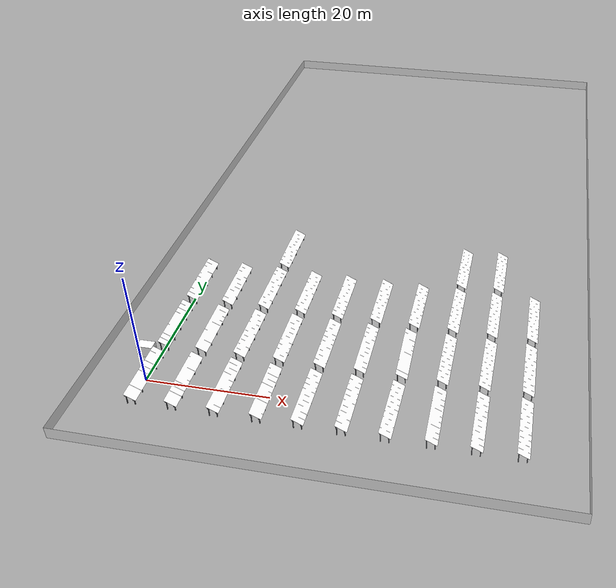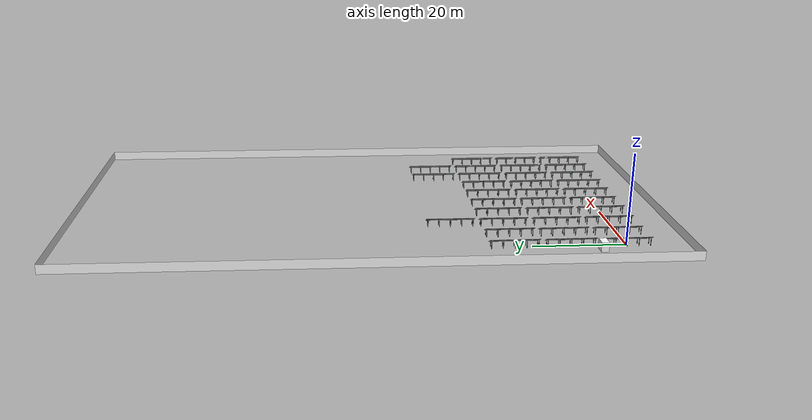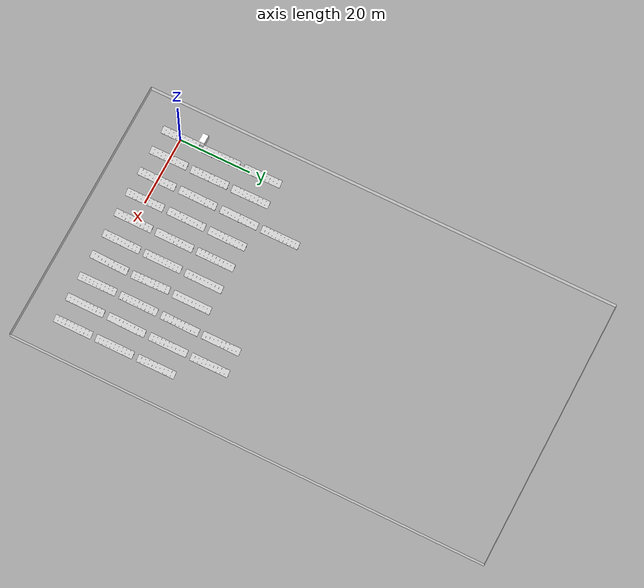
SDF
<sdf version="1.10">
 <world name="solar_farm">
  <model name="table_0000">
   <static>true</static>
   <pose>-0.004 0.024 0 0 0 0.00622</pose>
   <link name="table">
    <collision name="glass_col">
     <pose>0 0 1.6 0 0.488692 0</pose>
     <geometry><box><size>2.100 10.680 0.040</size></box></geometry>
    </collision>
    <visual name="glass">
     <pose>0 0 1.6 0 0.488692 0</pose>
     <geometry><mesh><uri>model://solar_farm_assets/meshes/pv_glass.obj</uri></mesh></geometry>
     <material>
      <ambient>0.25 0.25 0.25 1</ambient>
      <diffuse>1 1 1 1</diffuse>
      <specular>0.4 0.4 0.4 1</specular>
      <pbr>
       <metal>
        <albedo_map>model://solar_farm_assets/materials/textures/pv_atlas_07_albedo.png</albedo_map>
        <roughness_map>model://solar_farm_assets/materials/textures/pv_atlas_07_roughness.png</roughness_map>
        <normal_map>model://solar_farm_assets/materials/textures/pv_normal.png</normal_map>
        <metalness>0.1</metalness>
       </metal>
      </pbr>
     </material>
    </visual>
    <visual name="rack">
     <cast_shadows>false</cast_shadows>
     <geometry><mesh><uri>model://solar_farm_assets/meshes/pv_rack.obj</uri></mesh></geometry>
     <material>
      <ambient>0.18 0.18 0.20 1</ambient>
      <diffuse>0.40 0.41 0.43 1</diffuse>
      <specular>0.5 0.5 0.5 1</specular>
      <pbr><metal><roughness>0.45</roughness><metalness>0.85</metalness></metal></pbr>
     </material>
    </visual>
   </link>
  </model>
  <model name="table_0001">
   <static>true</static>
   <pose>0.085 11.881 0 0 0 0.01574</pose>
   <link name="table">
    <collision name="glass_col">
     <pose>0 0 1.6 0 0.488692 0</pose>
     <geometry><box><size>2.100 10.680 0.040</size></box></geometry>
    </collision>
    <visual name="glass">
     <pose>0 0 1.6 0 0.488692 0</pose>
     <geometry><mesh><uri>model://solar_farm_assets/meshes/pv_glass.obj</uri></mesh></geometry>
     <material>
      <ambient>0.25 0.25 0.25 1</ambient>
      <diffuse>1 1 1 1</diffuse>
      <specular>0.4 0.4 0.4 1</specular>
      <pbr>
       <metal>
        <albedo_map>model://solar_farm_assets/materials/textures/pv_atlas_05_albedo.png</albedo_map>
        <roughness_map>model://solar_farm_assets/materials/textures/pv_atlas_05_roughness.png</roughness_map>
        <normal_map>model://solar_farm_assets/materials/textures/pv_normal.png</normal_map>
        <metalness>0.1</metalness>
       </metal>
      </pbr>
     </material>
    </visual>
    <visual name="rack">
     <cast_shadows>false</cast_shadows>
     <geometry><mesh><uri>model://solar_farm_assets/meshes/pv_rack.obj</uri></mesh></geometry>
     <material>
      <ambient>0.18 0.18 0.20 1</ambient>
      <diffuse>0.40 0.41 0.43 1</diffuse>
      <specular>0.5 0.5 0.5 1</specular>
      <pbr><metal><roughness>0.45</roughness><metalness>0.85</metalness></metal></pbr>
     </material>
    </visual>
   </link>
  </model>
  <model name="table_0002">
   <static>true</static>
   <pose>0.010 23.819 0 0 0 0.01479</pose>
   <link name="table">
    <collision name="glass_col">
     <pose>0 0 1.6 0 0.488692 0</pose>
     <geometry><box><size>2.100 10.680 0.040</size></box></geometry>
    </collision>
    <visual name="glass">
     <pose>0 0 1.6 0 0.488692 0</pose>
     <geometry><mesh><uri>model://solar_farm_assets/meshes/pv_glass.obj</uri></mesh></geometry>
     <material>
      <ambient>0.25 0.25 0.25 1</ambient>
      <diffuse>1 1 1 1</diffuse>
      <specular>0.4 0.4 0.4 1</specular>
      <pbr>
       <metal>
        <albedo_map>model://solar_farm_assets/materials/textures/pv_atlas_14_albedo.png</albedo_map>
        <roughness_map>model://solar_farm_assets/materials/textures/pv_atlas_14_roughness.png</roughness_map>
        <normal_map>model://solar_farm_assets/materials/textures/pv_normal.png</normal_map>
        <metalness>0.1</metalness>
       </metal>
      </pbr>
     </material>
    </visual>
    <visual name="rack">
     <cast_shadows>false</cast_shadows>
     <geometry><mesh><uri>model://solar_farm_assets/meshes/pv_rack.obj</uri></mesh></geometry>
     <material>
      <ambient>0.18 0.18 0.20 1</ambient>
      <diffuse>0.40 0.41 0.43 1</diffuse>
      <specular>0.5 0.5 0.5 1</specular>
      <pbr><metal><roughness>0.45</roughness><metalness>0.85</metalness></metal></pbr>
     </material>
    </visual>
   </link>
  </model>
  <model name="table_0010">
   <static>true</static>
   <pose>6.442 0.004 0 0 0 0.00386</pose>
   <link name="table">
    <collision name="glass_col">
     <pose>0 0 1.6 0 0.488692 0</pose>
     <geometry><box><size>2.100 10.680 0.040</size></box></geometry>
    </collision>
    <visual name="glass">
     <pose>0 0 1.6 0 0.488692 0</pose>
     <geometry><mesh><uri>model://solar_farm_assets/meshes/pv_glass.obj</uri></mesh></geometry>
     <material>
      <ambient>0.25 0.25 0.25 1</ambient>
      <diffuse>1 1 1 1</diffuse>
      <specular>0.4 0.4 0.4 1</specular>
      <pbr>
       <metal>
        <albedo_map>model://solar_farm_assets/materials/textures/pv_atlas_06_albedo.png</albedo_map>
        <roughness_map>model://solar_farm_assets/materials/textures/pv_atlas_06_roughness.png</roughness_map>
        <normal_map>model://solar_farm_assets/materials/textures/pv_normal.png</normal_map>
        <metalness>0.1</metalness>
       </metal>
      </pbr>
     </material>
    </visual>
    <visual name="rack">
     <cast_shadows>false</cast_shadows>
     <geometry><mesh><uri>model://solar_farm_assets/meshes/pv_rack.obj</uri></mesh></geometry>
     <material>
      <ambient>0.18 0.18 0.20 1</ambient>
      <diffuse>0.40 0.41 0.43 1</diffuse>
      <specular>0.5 0.5 0.5 1</specular>
      <pbr><metal><roughness>0.45</roughness><metalness>0.85</metalness></metal></pbr>
     </material>
    </visual>
   </link>
  </model>
  <model name="table_0011">
   <static>true</static>
   <pose>6.492 11.845 0 0 0 0.01115</pose>
   <link name="table">
    <collision name="glass_col">
     <pose>0 0 1.6 0 0.488692 0</pose>
     <geometry><box><size>2.100 10.680 0.040</size></box></geometry>
    </collision>
    <visual name="glass">
     <pose>0 0 1.6 0 0.488692 0</pose>
     <geometry><mesh><uri>model://solar_farm_assets/meshes/pv_glass.obj</uri></mesh></geometry>
     <material>
      <ambient>0.25 0.25 0.25 1</ambient>
      <diffuse>1 1 1 1</diffuse>
      <specular>0.4 0.4 0.4 1</specular>
      <pbr>
       <metal>
        <albedo_map>model://solar_farm_assets/materials/textures/pv_atlas_11_albedo.png</albedo_map>
        <roughness_map>model://solar_farm_assets/materials/textures/pv_atlas_11_roughness.png</roughness_map>
        <normal_map>model://solar_farm_assets/materials/textures/pv_normal.png</normal_map>
        <metalness>0.1</metalness>
       </metal>
      </pbr>
     </material>
    </visual>
    <visual name="rack">
     <cast_shadows>false</cast_shadows>
     <geometry><mesh><uri>model://solar_farm_assets/meshes/pv_rack.obj</uri></mesh></geometry>
     <material>
      <ambient>0.18 0.18 0.20 1</ambient>
      <diffuse>0.40 0.41 0.43 1</diffuse>
      <specular>0.5 0.5 0.5 1</specular>
      <pbr><metal><roughness>0.45</roughness><metalness>0.85</metalness></metal></pbr>
     </material>
    </visual>
   </link>
  </model>
  <model name="table_0012">
   <static>true</static>
   <pose>6.516 23.714 0 0 0 0.00940</pose>
   <link name="table">
    <collision name="glass_col">
     <pose>0 0 1.6 0 0.488692 0</pose>
     <geometry><box><size>2.100 10.680 0.040</size></box></geometry>
    </collision>
    <visual name="glass">
     <pose>0 0 1.6 0 0.488692 0</pose>
     <geometry><mesh><uri>model://solar_farm_assets/meshes/pv_glass.obj</uri></mesh></geometry>
     <material>
      <ambient>0.25 0.25 0.25 1</ambient>
      <diffuse>1 1 1 1</diffuse>
      <specular>0.4 0.4 0.4 1</specular>
      <pbr>
       <metal>
        <albedo_map>model://solar_farm_assets/materials/textures/pv_atlas_12_albedo.png</albedo_map>
        <roughness_map>model://solar_farm_assets/materials/textures/pv_atlas_12_roughness.png</roughness_map>
        <normal_map>model://solar_farm_assets/materials/textures/pv_normal.png</normal_map>
        <metalness>0.1</metalness>
       </metal>
      </pbr>
     </material>
    </visual>
    <visual name="rack">
     <cast_shadows>false</cast_shadows>
     <geometry><mesh><uri>model://solar_farm_assets/meshes/pv_rack.obj</uri></mesh></geometry>
     <material>
      <ambient>0.18 0.18 0.20 1</ambient>
      <diffuse>0.40 0.41 0.43 1</diffuse>
      <specular>0.5 0.5 0.5 1</specular>
      <pbr><metal><roughness>0.45</roughness><metalness>0.85</metalness></metal></pbr>
     </material>
    </visual>
   </link>
  </model>
  <model name="table_0020">
   <static>true</static>
   <pose>13.037 -0.000 0 0 0 0.00254</pose>
   <link name="table">
    <collision name="glass_col">
     <pose>0 0 1.6 0 0.488692 0</pose>
     <geometry><box><size>2.100 10.680 0.040</size></box></geometry>
    </collision>
    <visual name="glass">
     <pose>0 0 1.6 0 0.488692 0</pose>
     <geometry><mesh><uri>model://solar_farm_assets/meshes/pv_glass.obj</uri></mesh></geometry>
     <material>
      <ambient>0.25 0.25 0.25 1</ambient>
      <diffuse>1 1 1 1</diffuse>
      <specular>0.4 0.4 0.4 1</specular>
      <pbr>
       <metal>
        <albedo_map>model://solar_farm_assets/materials/textures/pv_atlas_18_albedo.png</albedo_map>
        <roughness_map>model://solar_farm_assets/materials/textures/pv_atlas_18_roughness.png</roughness_map>
        <normal_map>model://solar_farm_assets/materials/textures/pv_normal.png</normal_map>
        <metalness>0.1</metalness>
       </metal>
      </pbr>
     </material>
    </visual>
    <visual name="rack">
     <cast_shadows>false</cast_shadows>
     <geometry><mesh><uri>model://solar_farm_assets/meshes/pv_rack.obj</uri></mesh></geometry>
     <material>
      <ambient>0.18 0.18 0.20 1</ambient>
      <diffuse>0.40 0.41 0.43 1</diffuse>
      <specular>0.5 0.5 0.5 1</specular>
      <pbr><metal><roughness>0.45</roughness><metalness>0.85</metalness></metal></pbr>
     </material>
    </visual>
   </link>
  </model>
  <model name="table_0021">
   <static>true</static>
   <pose>12.980 11.848 0 0 0 -0.00539</pose>
   <link name="table">
    <collision name="glass_col">
     <pose>0 0 1.6 0 0.488692 0</pose>
     <geometry><box><size>2.100 10.680 0.040</size></box></geometry>
    </collision>
    <visual name="glass">
     <pose>0 0 1.6 0 0.488692 0</pose>
     <geometry><mesh><uri>model://solar_farm_assets/meshes/pv_glass.obj</uri></mesh></geometry>
     <material>
      <ambient>0.25 0.25 0.25 1</ambient>
      <diffuse>1 1 1 1</diffuse>
      <specular>0.4 0.4 0.4 1</specular>
      <pbr>
       <metal>
        <albedo_map>model://solar_farm_assets/materials/textures/pv_atlas_04_albedo.png</albedo_map>
        <roughness_map>model://solar_farm_assets/materials/textures/pv_atlas_04_roughness.png</roughness_map>
        <normal_map>model://solar_farm_assets/materials/textures/pv_normal.png</normal_map>
        <metalness>0.1</metalness>
       </metal>
      </pbr>
     </material>
    </visual>
    <visual name="rack">
     <cast_shadows>false</cast_shadows>
     <geometry><mesh><uri>model://solar_farm_assets/meshes/pv_rack.obj</uri></mesh></geometry>
     <material>
      <ambient>0.18 0.18 0.20 1</ambient>
      <diffuse>0.40 0.41 0.43 1</diffuse>
      <specular>0.5 0.5 0.5 1</specular>
      <pbr><metal><roughness>0.45</roughness><metalness>0.85</metalness></metal></pbr>
     </material>
    </visual>
   </link>
  </model>
  <model name="table_0022">
   <static>true</static>
   <pose>13.007 23.825 0 0 0 -0.00514</pose>
   <link name="table">
    <collision name="glass_col">
     <pose>0 0 1.6 0 0.488692 0</pose>
     <geometry><box><size>2.100 10.680 0.040</size></box></geometry>
    </collision>
    <visual name="glass">
     <pose>0 0 1.6 0 0.488692 0</pose>
     <geometry><mesh><uri>model://solar_farm_assets/meshes/pv_glass.obj</uri></mesh></geometry>
     <material>
      <ambient>0.25 0.25 0.25 1</ambient>
      <diffuse>1 1 1 1</diffuse>
      <specular>0.4 0.4 0.4 1</specular>
      <pbr>
       <metal>
        <albedo_map>model://solar_farm_assets/materials/textures/pv_atlas_08_albedo.png</albedo_map>
        <roughness_map>model://solar_farm_assets/materials/textures/pv_atlas_08_roughness.png</roughness_map>
        <normal_map>model://solar_farm_assets/materials/textures/pv_normal.png</normal_map>
        <metalness>0.1</metalness>
       </metal>
      </pbr>
     </material>
    </visual>
    <visual name="rack">
     <cast_shadows>false</cast_shadows>
     <geometry><mesh><uri>model://solar_farm_assets/meshes/pv_rack.obj</uri></mesh></geometry>
     <material>
      <ambient>0.18 0.18 0.20 1</ambient>
      <diffuse>0.40 0.41 0.43 1</diffuse>
      <specular>0.5 0.5 0.5 1</specular>
      <pbr><metal><roughness>0.45</roughness><metalness>0.85</metalness></metal></pbr>
     </material>
    </visual>
   </link>
  </model>
  <model name="table_0023">
   <static>true</static>
   <pose>13.054 35.661 0 0 0 0.00059</pose>
   <link name="table">
    <collision name="glass_col">
     <pose>0 0 1.6 0 0.488692 0</pose>
     <geometry><box><size>2.100 10.680 0.040</size></box></geometry>
    </collision>
    <visual name="glass">
     <pose>0 0 1.6 0 0.488692 0</pose>
     <geometry><mesh><uri>model://solar_farm_assets/meshes/pv_glass.obj</uri></mesh></geometry>
     <material>
      <ambient>0.25 0.25 0.25 1</ambient>
      <diffuse>1 1 1 1</diffuse>
      <specular>0.4 0.4 0.4 1</specular>
      <pbr>
       <metal>
        <albedo_map>model://solar_farm_assets/materials/textures/pv_atlas_15_albedo.png</albedo_map>
        <roughness_map>model://solar_farm_assets/materials/textures/pv_atlas_15_roughness.png</roughness_map>
        <normal_map>model://solar_farm_assets/materials/textures/pv_normal.png</normal_map>
        <metalness>0.1</metalness>
       </metal>
      </pbr>
     </material>
    </visual>
    <visual name="rack">
     <cast_shadows>false</cast_shadows>
     <geometry><mesh><uri>model://solar_farm_assets/meshes/pv_rack.obj</uri></mesh></geometry>
     <material>
      <ambient>0.18 0.18 0.20 1</ambient>
      <diffuse>0.40 0.41 0.43 1</diffuse>
      <specular>0.5 0.5 0.5 1</specular>
      <pbr><metal><roughness>0.45</roughness><metalness>0.85</metalness></metal></pbr>
     </material>
    </visual>
   </link>
  </model>
  <model name="table_0030">
   <static>true</static>
   <pose>19.559 -0.026 0 0 0 0.01106</pose>
   <link name="table">
    <collision name="glass_col">
     <pose>0 0 1.6 0 0.488692 0</pose>
     <geometry><box><size>2.100 10.680 0.040</size></box></geometry>
    </collision>
    <visual name="glass">
     <pose>0 0 1.6 0 0.488692 0</pose>
     <geometry><mesh><uri>model://solar_farm_assets/meshes/pv_glass.obj</uri></mesh></geometry>
     <material>
      <ambient>0.25 0.25 0.25 1</ambient>
      <diffuse>1 1 1 1</diffuse>
      <specular>0.4 0.4 0.4 1</specular>
      <pbr>
       <metal>
        <albedo_map>model://solar_farm_assets/materials/textures/pv_atlas_00_albedo.png</albedo_map>
        <roughness_map>model://solar_farm_assets/materials/textures/pv_atlas_00_roughness.png</roughness_map>
        <normal_map>model://solar_farm_assets/materials/textures/pv_normal.png</normal_map>
        <metalness>0.1</metalness>
       </metal>
      </pbr>
     </material>
    </visual>
    <visual name="rack">
     <cast_shadows>false</cast_shadows>
     <geometry><mesh><uri>model://solar_farm_assets/meshes/pv_rack.obj</uri></mesh></geometry>
     <material>
      <ambient>0.18 0.18 0.20 1</ambient>
      <diffuse>0.40 0.41 0.43 1</diffuse>
      <specular>0.5 0.5 0.5 1</specular>
      <pbr><metal><roughness>0.45</roughness><metalness>0.85</metalness></metal></pbr>
     </material>
    </visual>
   </link>
  </model>
  <model name="table_0031">
   <static>true</static>
   <pose>19.452 11.926 0 0 0 -0.00054</pose>
   <link name="table">
    <collision name="glass_col">
     <pose>0 0 1.6 0 0.488692 0</pose>
     <geometry><box><size>2.100 10.680 0.040</size></box></geometry>
    </collision>
    <visual name="glass">
     <pose>0 0 1.6 0 0.488692 0</pose>
     <geometry><mesh><uri>model://solar_farm_assets/meshes/pv_glass.obj</uri></mesh></geometry>
     <material>
      <ambient>0.25 0.25 0.25 1</ambient>
      <diffuse>1 1 1 1</diffuse>
      <specular>0.4 0.4 0.4 1</specular>
      <pbr>
       <metal>
        <albedo_map>model://solar_farm_assets/materials/textures/pv_atlas_07_albedo.png</albedo_map>
        <roughness_map>model://solar_farm_assets/materials/textures/pv_atlas_07_roughness.png</roughness_map>
        <normal_map>model://solar_farm_assets/materials/textures/pv_normal.png</normal_map>
        <metalness>0.1</metalness>
       </metal>
      </pbr>
     </material>
    </visual>
    <visual name="rack">
     <cast_shadows>false</cast_shadows>
     <geometry><mesh><uri>model://solar_farm_assets/meshes/pv_rack.obj</uri></mesh></geometry>
     <material>
      <ambient>0.18 0.18 0.20 1</ambient>
      <diffuse>0.40 0.41 0.43 1</diffuse>
      <specular>0.5 0.5 0.5 1</specular>
      <pbr><metal><roughness>0.45</roughness><metalness>0.85</metalness></metal></pbr>
     </material>
    </visual>
   </link>
  </model>
  <model name="table_0032">
   <static>true</static>
   <pose>19.539 23.746 0 0 0 -0.00220</pose>
   <link name="table">
    <collision name="glass_col">
     <pose>0 0 1.6 0 0.488692 0</pose>
     <geometry><box><size>2.100 10.680 0.040</size></box></geometry>
    </collision>
    <visual name="glass">
     <pose>0 0 1.6 0 0.488692 0</pose>
     <geometry><mesh><uri>model://solar_farm_assets/meshes/pv_glass.obj</uri></mesh></geometry>
     <material>
      <ambient>0.25 0.25 0.25 1</ambient>
      <diffuse>1 1 1 1</diffuse>
      <specular>0.4 0.4 0.4 1</specular>
      <pbr>
       <metal>
        <albedo_map>model://solar_farm_assets/materials/textures/pv_atlas_05_albedo.png</albedo_map>
        <roughness_map>model://solar_farm_assets/materials/textures/pv_atlas_05_roughness.png</roughness_map>
        <normal_map>model://solar_farm_assets/materials/textures/pv_normal.png</normal_map>
        <metalness>0.1</metalness>
       </metal>
      </pbr>
     </material>
    </visual>
    <visual name="rack">
     <cast_shadows>false</cast_shadows>
     <geometry><mesh><uri>model://solar_farm_assets/meshes/pv_rack.obj</uri></mesh></geometry>
     <material>
      <ambient>0.18 0.18 0.20 1</ambient>
      <diffuse>0.40 0.41 0.43 1</diffuse>
      <specular>0.5 0.5 0.5 1</specular>
      <pbr><metal><roughness>0.45</roughness><metalness>0.85</metalness></metal></pbr>
     </material>
    </visual>
   </link>
  </model>
  <model name="table_0040">
   <static>true</static>
   <pose>25.960 0.032 0 0 0 -0.00530</pose>
   <link name="table">
    <collision name="glass_col">
     <pose>0 0 1.6 0 0.488692 0</pose>
     <geometry><box><size>2.100 10.680 0.040</size></box></geometry>
    </collision>
    <visual name="glass">
     <pose>0 0 1.6 0 0.488692 0</pose>
     <geometry><mesh><uri>model://solar_farm_assets/meshes/pv_glass.obj</uri></mesh></geometry>
     <material>
      <ambient>0.25 0.25 0.25 1</ambient>
      <diffuse>1 1 1 1</diffuse>
      <specular>0.4 0.4 0.4 1</specular>
      <pbr>
       <metal>
        <albedo_map>model://solar_farm_assets/materials/textures/pv_atlas_19_albedo.png</albedo_map>
        <roughness_map>model://solar_farm_assets/materials/textures/pv_atlas_19_roughness.png</roughness_map>
        <normal_map>model://solar_farm_assets/materials/textures/pv_normal.png</normal_map>
        <metalness>0.1</metalness>
       </metal>
      </pbr>
     </material>
    </visual>
    <visual name="rack">
     <cast_shadows>false</cast_shadows>
     <geometry><mesh><uri>model://solar_farm_assets/meshes/pv_rack.obj</uri></mesh></geometry>
     <material>
      <ambient>0.18 0.18 0.20 1</ambient>
      <diffuse>0.40 0.41 0.43 1</diffuse>
      <specular>0.5 0.5 0.5 1</specular>
      <pbr><metal><roughness>0.45</roughness><metalness>0.85</metalness></metal></pbr>
     </material>
    </visual>
   </link>
  </model>
  <model name="table_0041">
   <static>true</static>
   <pose>26.022 11.888 0 0 0 0.00023</pose>
   <link name="table">
    <collision name="glass_col">
     <pose>0 0 1.6 0 0.488692 0</pose>
     <geometry><box><size>2.100 10.680 0.040</size></box></geometry>
    </collision>
    <visual name="glass">
     <pose>0 0 1.6 0 0.488692 0</pose>
     <geometry><mesh><uri>model://solar_farm_assets/meshes/pv_glass.obj</uri></mesh></geometry>
     <material>
      <ambient>0.25 0.25 0.25 1</ambient>
      <diffuse>1 1 1 1</diffuse>
      <specular>0.4 0.4 0.4 1</specular>
      <pbr>
       <metal>
        <albedo_map>model://solar_farm_assets/materials/textures/pv_atlas_09_albedo.png</albedo_map>
        <roughness_map>model://solar_farm_assets/materials/textures/pv_atlas_09_roughness.png</roughness_map>
        <normal_map>model://solar_farm_assets/materials/textures/pv_normal.png</normal_map>
        <metalness>0.1</metalness>
       </metal>
      </pbr>
     </material>
    </visual>
    <visual name="rack">
     <cast_shadows>false</cast_shadows>
     <geometry><mesh><uri>model://solar_farm_assets/meshes/pv_rack.obj</uri></mesh></geometry>
     <material>
      <ambient>0.18 0.18 0.20 1</ambient>
      <diffuse>0.40 0.41 0.43 1</diffuse>
      <specular>0.5 0.5 0.5 1</specular>
      <pbr><metal><roughness>0.45</roughness><metalness>0.85</metalness></metal></pbr>
     </material>
    </visual>
   </link>
  </model>
  <model name="table_0042">
   <static>true</static>
   <pose>25.963 23.711 0 0 0 -0.00106</pose>
   <link name="table">
    <collision name="glass_col">
     <pose>0 0 1.6 0 0.488692 0</pose>
     <geometry><box><size>2.100 10.680 0.040</size></box></geometry>
    </collision>
    <visual name="glass">
     <pose>0 0 1.6 0 0.488692 0</pose>
     <geometry><mesh><uri>model://solar_farm_assets/meshes/pv_glass.obj</uri></mesh></geometry>
     <material>
      <ambient>0.25 0.25 0.25 1</ambient>
      <diffuse>1 1 1 1</diffuse>
      <specular>0.4 0.4 0.4 1</specular>
      <pbr>
       <metal>
        <albedo_map>model://solar_farm_assets/materials/textures/pv_atlas_15_albedo.png</albedo_map>
        <roughness_map>model://solar_farm_assets/materials/textures/pv_atlas_15_roughness.png</roughness_map>
        <normal_map>model://solar_farm_assets/materials/textures/pv_normal.png</normal_map>
        <metalness>0.1</metalness>
       </metal>
      </pbr>
     </material>
    </visual>
    <visual name="rack">
     <cast_shadows>false</cast_shadows>
     <geometry><mesh><uri>model://solar_farm_assets/meshes/pv_rack.obj</uri></mesh></geometry>
     <material>
      <ambient>0.18 0.18 0.20 1</ambient>
      <diffuse>0.40 0.41 0.43 1</diffuse>
      <specular>0.5 0.5 0.5 1</specular>
      <pbr><metal><roughness>0.45</roughness><metalness>0.85</metalness></metal></pbr>
     </material>
    </visual>
   </link>
  </model>
  <model name="table_0050">
   <static>true</static>
   <pose>32.457 0.001 0 0 0 -0.00225</pose>
   <link name="table">
    <collision name="glass_col">
     <pose>0 0 1.6 0 0.488692 0</pose>
     <geometry><box><size>2.100 10.680 0.040</size></box></geometry>
    </collision>
    <visual name="glass">
     <pose>0 0 1.6 0 0.488692 0</pose>
     <geometry><mesh><uri>model://solar_farm_assets/meshes/pv_glass.obj</uri></mesh></geometry>
     <material>
      <ambient>0.25 0.25 0.25 1</ambient>
      <diffuse>1 1 1 1</diffuse>
      <specular>0.4 0.4 0.4 1</specular>
      <pbr>
       <metal>
        <albedo_map>model://solar_farm_assets/materials/textures/pv_atlas_07_albedo.png</albedo_map>
        <roughness_map>model://solar_farm_assets/materials/textures/pv_atlas_07_roughness.png</roughness_map>
        <normal_map>model://solar_farm_assets/materials/textures/pv_normal.png</normal_map>
        <metalness>0.1</metalness>
       </metal>
      </pbr>
     </material>
    </visual>
    <visual name="rack">
     <cast_shadows>false</cast_shadows>
     <geometry><mesh><uri>model://solar_farm_assets/meshes/pv_rack.obj</uri></mesh></geometry>
     <material>
      <ambient>0.18 0.18 0.20 1</ambient>
      <diffuse>0.40 0.41 0.43 1</diffuse>
      <specular>0.5 0.5 0.5 1</specular>
      <pbr><metal><roughness>0.45</roughness><metalness>0.85</metalness></metal></pbr>
     </material>
    </visual>
   </link>
  </model>
  <model name="table_0051">
   <static>true</static>
   <pose>32.481 11.900 0 0 0 0.00474</pose>
   <link name="table">
    <collision name="glass_col">
     <pose>0 0 1.6 0 0.488692 0</pose>
     <geometry><box><size>2.100 10.680 0.040</size></box></geometry>
    </collision>
    <visual name="glass">
     <pose>0 0 1.6 0 0.488692 0</pose>
     <geometry><mesh><uri>model://solar_farm_assets/meshes/pv_glass.obj</uri></mesh></geometry>
     <material>
      <ambient>0.25 0.25 0.25 1</ambient>
      <diffuse>1 1 1 1</diffuse>
      <specular>0.4 0.4 0.4 1</specular>
      <pbr>
       <metal>
        <albedo_map>model://solar_farm_assets/materials/textures/pv_atlas_08_albedo.png</albedo_map>
        <roughness_map>model://solar_farm_assets/materials/textures/pv_atlas_08_roughness.png</roughness_map>
        <normal_map>model://solar_farm_assets/materials/textures/pv_normal.png</normal_map>
        <metalness>0.1</metalness>
       </metal>
      </pbr>
     </material>
    </visual>
    <visual name="rack">
     <cast_shadows>false</cast_shadows>
     <geometry><mesh><uri>model://solar_farm_assets/meshes/pv_rack.obj</uri></mesh></geometry>
     <material>
      <ambient>0.18 0.18 0.20 1</ambient>
      <diffuse>0.40 0.41 0.43 1</diffuse>
      <specular>0.5 0.5 0.5 1</specular>
      <pbr><metal><roughness>0.45</roughness><metalness>0.85</metalness></metal></pbr>
     </material>
    </visual>
   </link>
  </model>
  <model name="table_0052">
   <static>true</static>
   <pose>32.573 23.798 0 0 0 -0.00199</pose>
   <link name="table">
    <collision name="glass_col">
     <pose>0 0 1.6 0 0.488692 0</pose>
     <geometry><box><size>2.100 10.680 0.040</size></box></geometry>
    </collision>
    <visual name="glass">
     <pose>0 0 1.6 0 0.488692 0</pose>
     <geometry><mesh><uri>model://solar_farm_assets/meshes/pv_glass.obj</uri></mesh></geometry>
     <material>
      <ambient>0.25 0.25 0.25 1</ambient>
      <diffuse>1 1 1 1</diffuse>
      <specular>0.4 0.4 0.4 1</specular>
      <pbr>
       <metal>
        <albedo_map>model://solar_farm_assets/materials/textures/pv_atlas_05_albedo.png</albedo_map>
        <roughness_map>model://solar_farm_assets/materials/textures/pv_atlas_05_roughness.png</roughness_map>
        <normal_map>model://solar_farm_assets/materials/textures/pv_normal.png</normal_map>
        <metalness>0.1</metalness>
       </metal>
      </pbr>
     </material>
    </visual>
    <visual name="rack">
     <cast_shadows>false</cast_shadows>
     <geometry><mesh><uri>model://solar_farm_assets/meshes/pv_rack.obj</uri></mesh></geometry>
     <material>
      <ambient>0.18 0.18 0.20 1</ambient>
      <diffuse>0.40 0.41 0.43 1</diffuse>
      <specular>0.5 0.5 0.5 1</specular>
      <pbr><metal><roughness>0.45</roughness><metalness>0.85</metalness></metal></pbr>
     </material>
    </visual>
   </link>
  </model>
  <model name="table_0060">
   <static>true</static>
   <pose>38.960 -0.050 0 0 0 -0.01400</pose>
   <link name="table">
    <collision name="glass_col">
     <pose>0 0 1.6 0 0.488692 0</pose>
     <geometry><box><size>2.100 10.680 0.040</size></box></geometry>
    </collision>
    <visual name="glass">
     <pose>0 0 1.6 0 0.488692 0</pose>
     <geometry><mesh><uri>model://solar_farm_assets/meshes/pv_glass.obj</uri></mesh></geometry>
     <material>
      <ambient>0.25 0.25 0.25 1</ambient>
      <diffuse>1 1 1 1</diffuse>
      <specular>0.4 0.4 0.4 1</specular>
      <pbr>
       <metal>
        <albedo_map>model://solar_farm_assets/materials/textures/pv_atlas_08_albedo.png</albedo_map>
        <roughness_map>model://solar_farm_assets/materials/textures/pv_atlas_08_roughness.png</roughness_map>
        <normal_map>model://solar_farm_assets/materials/textures/pv_normal.png</normal_map>
        <metalness>0.1</metalness>
       </metal>
      </pbr>
     </material>
    </visual>
    <visual name="rack">
     <cast_shadows>false</cast_shadows>
     <geometry><mesh><uri>model://solar_farm_assets/meshes/pv_rack.obj</uri></mesh></geometry>
     <material>
      <ambient>0.18 0.18 0.20 1</ambient>
      <diffuse>0.40 0.41 0.43 1</diffuse>
      <specular>0.5 0.5 0.5 1</specular>
      <pbr><metal><roughness>0.45</roughness><metalness>0.85</metalness></metal></pbr>
     </material>
    </visual>
   </link>
  </model>
  <model name="table_0061">
   <static>true</static>
   <pose>38.974 11.865 0 0 0 0.02695</pose>
   <link name="table">
    <collision name="glass_col">
     <pose>0 0 1.6 0 0.488692 0</pose>
     <geometry><box><size>2.100 10.680 0.040</size></box></geometry>
    </collision>
    <visual name="glass">
     <pose>0 0 1.6 0 0.488692 0</pose>
     <geometry><mesh><uri>model://solar_farm_assets/meshes/pv_glass.obj</uri></mesh></geometry>
     <material>
      <ambient>0.25 0.25 0.25 1</ambient>
      <diffuse>1 1 1 1</diffuse>
      <specular>0.4 0.4 0.4 1</specular>
      <pbr>
       <metal>
        <albedo_map>model://solar_farm_assets/materials/textures/pv_atlas_04_albedo.png</albedo_map>
        <roughness_map>model://solar_farm_assets/materials/textures/pv_atlas_04_roughness.png</roughness_map>
        <normal_map>model://solar_farm_assets/materials/textures/pv_normal.png</normal_map>
        <metalness>0.1</metalness>
       </metal>
      </pbr>
     </material>
    </visual>
    <visual name="rack">
     <cast_shadows>false</cast_shadows>
     <geometry><mesh><uri>model://solar_farm_assets/meshes/pv_rack.obj</uri></mesh></geometry>
     <material>
      <ambient>0.18 0.18 0.20 1</ambient>
      <diffuse>0.40 0.41 0.43 1</diffuse>
      <specular>0.5 0.5 0.5 1</specular>
      <pbr><metal><roughness>0.45</roughness><metalness>0.85</metalness></metal></pbr>
     </material>
    </visual>
   </link>
  </model>
  <model name="table_0062">
   <static>true</static>
   <pose>39.025 23.775 0 0 0 0.00130</pose>
   <link name="table">
    <collision name="glass_col">
     <pose>0 0 1.6 0 0.488692 0</pose>
     <geometry><box><size>2.100 10.680 0.040</size></box></geometry>
    </collision>
    <visual name="glass">
     <pose>0 0 1.6 0 0.488692 0</pose>
     <geometry><mesh><uri>model://solar_farm_assets/meshes/pv_glass.obj</uri></mesh></geometry>
     <material>
      <ambient>0.25 0.25 0.25 1</ambient>
      <diffuse>1 1 1 1</diffuse>
      <specular>0.4 0.4 0.4 1</specular>
      <pbr>
       <metal>
        <albedo_map>model://solar_farm_assets/materials/textures/pv_atlas_03_albedo.png</albedo_map>
        <roughness_map>model://solar_farm_assets/materials/textures/pv_atlas_03_roughness.png</roughness_map>
        <normal_map>model://solar_farm_assets/materials/textures/pv_normal.png</normal_map>
        <metalness>0.1</metalness>
       </metal>
      </pbr>
     </material>
    </visual>
    <visual name="rack">
     <cast_shadows>false</cast_shadows>
     <geometry><mesh><uri>model://solar_farm_assets/meshes/pv_rack.obj</uri></mesh></geometry>
     <material>
      <ambient>0.18 0.18 0.20 1</ambient>
      <diffuse>0.40 0.41 0.43 1</diffuse>
      <specular>0.5 0.5 0.5 1</specular>
      <pbr><metal><roughness>0.45</roughness><metalness>0.85</metalness></metal></pbr>
     </material>
    </visual>
   </link>
  </model>
  <model name="table_0070">
   <static>true</static>
   <pose>45.489 -0.037 0 0 0 0.01252</pose>
   <link name="table">
    <collision name="glass_col">
     <pose>0 0 1.6 0 0.488692 0</pose>
     <geometry><box><size>2.100 10.680 0.040</size></box></geometry>
    </collision>
    <visual name="glass">
     <pose>0 0 1.6 0 0.488692 0</pose>
     <geometry><mesh><uri>model://solar_farm_assets/meshes/pv_glass.obj</uri></mesh></geometry>
     <material>
      <ambient>0.25 0.25 0.25 1</ambient>
      <diffuse>1 1 1 1</diffuse>
      <specular>0.4 0.4 0.4 1</specular>
      <pbr>
       <metal>
        <albedo_map>model://solar_farm_assets/materials/textures/pv_atlas_05_albedo.png</albedo_map>
        <roughness_map>model://solar_farm_assets/materials/textures/pv_atlas_05_roughness.png</roughness_map>
        <normal_map>model://solar_farm_assets/materials/textures/pv_normal.png</normal_map>
        <metalness>0.1</metalness>
       </metal>
      </pbr>
     </material>
    </visual>
    <visual name="rack">
     <cast_shadows>false</cast_shadows>
     <geometry><mesh><uri>model://solar_farm_assets/meshes/pv_rack.obj</uri></mesh></geometry>
     <material>
      <ambient>0.18 0.18 0.20 1</ambient>
      <diffuse>0.40 0.41 0.43 1</diffuse>
      <specular>0.5 0.5 0.5 1</specular>
      <pbr><metal><roughness>0.45</roughness><metalness>0.85</metalness></metal></pbr>
     </material>
    </visual>
   </link>
  </model>
  <model name="table_0071">
   <static>true</static>
   <pose>45.486 11.837 0 0 0 -0.00221</pose>
   <link name="table">
    <collision name="glass_col">
     <pose>0 0 1.6 0 0.488692 0</pose>
     <geometry><box><size>2.100 10.680 0.040</size></box></geometry>
    </collision>
    <visual name="glass">
     <pose>0 0 1.6 0 0.488692 0</pose>
     <geometry><mesh><uri>model://solar_farm_assets/meshes/pv_glass.obj</uri></mesh></geometry>
     <material>
      <ambient>0.25 0.25 0.25 1</ambient>
      <diffuse>1 1 1 1</diffuse>
      <specular>0.4 0.4 0.4 1</specular>
      <pbr>
       <metal>
        <albedo_map>model://solar_farm_assets/materials/textures/pv_atlas_11_albedo.png</albedo_map>
        <roughness_map>model://solar_farm_assets/materials/textures/pv_atlas_11_roughness.png</roughness_map>
        <normal_map>model://solar_farm_assets/materials/textures/pv_normal.png</normal_map>
        <metalness>0.1</metalness>
       </metal>
      </pbr>
     </material>
    </visual>
    <visual name="rack">
     <cast_shadows>false</cast_shadows>
     <geometry><mesh><uri>model://solar_farm_assets/meshes/pv_rack.obj</uri></mesh></geometry>
     <material>
      <ambient>0.18 0.18 0.20 1</ambient>
      <diffuse>0.40 0.41 0.43 1</diffuse>
      <specular>0.5 0.5 0.5 1</specular>
      <pbr><metal><roughness>0.45</roughness><metalness>0.85</metalness></metal></pbr>
     </material>
    </visual>
   </link>
  </model>
  <model name="table_0072">
   <static>true</static>
   <pose>45.542 23.783 0 0 0 -0.00851</pose>
   <link name="table">
    <collision name="glass_col">
     <pose>0 0 1.6 0 0.488692 0</pose>
     <geometry><box><size>2.100 10.680 0.040</size></box></geometry>
    </collision>
    <visual name="glass">
     <pose>0 0 1.6 0 0.488692 0</pose>
     <geometry><mesh><uri>model://solar_farm_assets/meshes/pv_glass.obj</uri></mesh></geometry>
     <material>
      <ambient>0.25 0.25 0.25 1</ambient>
      <diffuse>1 1 1 1</diffuse>
      <specular>0.4 0.4 0.4 1</specular>
      <pbr>
       <metal>
        <albedo_map>model://solar_farm_assets/materials/textures/pv_atlas_06_albedo.png</albedo_map>
        <roughness_map>model://solar_farm_assets/materials/textures/pv_atlas_06_roughness.png</roughness_map>
        <normal_map>model://solar_farm_assets/materials/textures/pv_normal.png</normal_map>
        <metalness>0.1</metalness>
       </metal>
      </pbr>
     </material>
    </visual>
    <visual name="rack">
     <cast_shadows>false</cast_shadows>
     <geometry><mesh><uri>model://solar_farm_assets/meshes/pv_rack.obj</uri></mesh></geometry>
     <material>
      <ambient>0.18 0.18 0.20 1</ambient>
      <diffuse>0.40 0.41 0.43 1</diffuse>
      <specular>0.5 0.5 0.5 1</specular>
      <pbr><metal><roughness>0.45</roughness><metalness>0.85</metalness></metal></pbr>
     </material>
    </visual>
   </link>
  </model>
  <model name="table_0073">
   <static>true</static>
   <pose>45.520 35.537 0 0 0 -0.00466</pose>
   <link name="table">
    <collision name="glass_col">
     <pose>0 0 1.6 0 0.488692 0</pose>
     <geometry><box><size>2.100 10.680 0.040</size></box></geometry>
    </collision>
    <visual name="glass">
     <pose>0 0 1.6 0 0.488692 0</pose>
     <geometry><mesh><uri>model://solar_farm_assets/meshes/pv_glass.obj</uri></mesh></geometry>
     <material>
      <ambient>0.25 0.25 0.25 1</ambient>
      <diffuse>1 1 1 1</diffuse>
      <specular>0.4 0.4 0.4 1</specular>
      <pbr>
       <metal>
        <albedo_map>model://solar_farm_assets/materials/textures/pv_atlas_19_albedo.png</albedo_map>
        <roughness_map>model://solar_farm_assets/materials/textures/pv_atlas_19_roughness.png</roughness_map>
        <normal_map>model://solar_farm_assets/materials/textures/pv_normal.png</normal_map>
        <metalness>0.1</metalness>
       </metal>
      </pbr>
     </material>
    </visual>
    <visual name="rack">
     <cast_shadows>false</cast_shadows>
     <geometry><mesh><uri>model://solar_farm_assets/meshes/pv_rack.obj</uri></mesh></geometry>
     <material>
      <ambient>0.18 0.18 0.20 1</ambient>
      <diffuse>0.40 0.41 0.43 1</diffuse>
      <specular>0.5 0.5 0.5 1</specular>
      <pbr><metal><roughness>0.45</roughness><metalness>0.85</metalness></metal></pbr>
     </material>
    </visual>
   </link>
  </model>
  <model name="table_0080">
   <static>true</static>
   <pose>51.967 -0.023 0 0 0 0.00170</pose>
   <link name="table">
    <collision name="glass_col">
     <pose>0 0 1.6 0 0.488692 0</pose>
     <geometry><box><size>2.100 10.680 0.040</size></box></geometry>
    </collision>
    <visual name="glass">
     <pose>0 0 1.6 0 0.488692 0</pose>
     <geometry><mesh><uri>model://solar_farm_assets/meshes/pv_glass.obj</uri></mesh></geometry>
     <material>
      <ambient>0.25 0.25 0.25 1</ambient>
      <diffuse>1 1 1 1</diffuse>
      <specular>0.4 0.4 0.4 1</specular>
      <pbr>
       <metal>
        <albedo_map>model://solar_farm_assets/materials/textures/pv_atlas_07_albedo.png</albedo_map>
        <roughness_map>model://solar_farm_assets/materials/textures/pv_atlas_07_roughness.png</roughness_map>
        <normal_map>model://solar_farm_assets/materials/textures/pv_normal.png</normal_map>
        <metalness>0.1</metalness>
       </metal>
      </pbr>
     </material>
    </visual>
    <visual name="rack">
     <cast_shadows>false</cast_shadows>
     <geometry><mesh><uri>model://solar_farm_assets/meshes/pv_rack.obj</uri></mesh></geometry>
     <material>
      <ambient>0.18 0.18 0.20 1</ambient>
      <diffuse>0.40 0.41 0.43 1</diffuse>
      <specular>0.5 0.5 0.5 1</specular>
      <pbr><metal><roughness>0.45</roughness><metalness>0.85</metalness></metal></pbr>
     </material>
    </visual>
   </link>
  </model>
  <model name="table_0081">
   <static>true</static>
   <pose>51.961 11.837 0 0 0 -0.01173</pose>
   <link name="table">
    <collision name="glass_col">
     <pose>0 0 1.6 0 0.488692 0</pose>
     <geometry><box><size>2.100 10.680 0.040</size></box></geometry>
    </collision>
    <visual name="glass">
     <pose>0 0 1.6 0 0.488692 0</pose>
     <geometry><mesh><uri>model://solar_farm_assets/meshes/pv_glass.obj</uri></mesh></geometry>
     <material>
      <ambient>0.25 0.25 0.25 1</ambient>
      <diffuse>1 1 1 1</diffuse>
      <specular>0.4 0.4 0.4 1</specular>
      <pbr>
       <metal>
        <albedo_map>model://solar_farm_assets/materials/textures/pv_atlas_09_albedo.png</albedo_map>
        <roughness_map>model://solar_farm_assets/materials/textures/pv_atlas_09_roughness.png</roughness_map>
        <normal_map>model://solar_farm_assets/materials/textures/pv_normal.png</normal_map>
        <metalness>0.1</metalness>
       </metal>
      </pbr>
     </material>
    </visual>
    <visual name="rack">
     <cast_shadows>false</cast_shadows>
     <geometry><mesh><uri>model://solar_farm_assets/meshes/pv_rack.obj</uri></mesh></geometry>
     <material>
      <ambient>0.18 0.18 0.20 1</ambient>
      <diffuse>0.40 0.41 0.43 1</diffuse>
      <specular>0.5 0.5 0.5 1</specular>
      <pbr><metal><roughness>0.45</roughness><metalness>0.85</metalness></metal></pbr>
     </material>
    </visual>
   </link>
  </model>
  <model name="table_0082">
   <static>true</static>
   <pose>51.941 23.773 0 0 0 -0.00089</pose>
   <link name="table">
    <collision name="glass_col">
     <pose>0 0 1.6 0 0.488692 0</pose>
     <geometry><box><size>2.100 10.680 0.040</size></box></geometry>
    </collision>
    <visual name="glass">
     <pose>0 0 1.6 0 0.488692 0</pose>
     <geometry><mesh><uri>model://solar_farm_assets/meshes/pv_glass.obj</uri></mesh></geometry>
     <material>
      <ambient>0.25 0.25 0.25 1</ambient>
      <diffuse>1 1 1 1</diffuse>
      <specular>0.4 0.4 0.4 1</specular>
      <pbr>
       <metal>
        <albedo_map>model://solar_farm_assets/materials/textures/pv_atlas_12_albedo.png</albedo_map>
        <roughness_map>model://solar_farm_assets/materials/textures/pv_atlas_12_roughness.png</roughness_map>
        <normal_map>model://solar_farm_assets/materials/textures/pv_normal.png</normal_map>
        <metalness>0.1</metalness>
       </metal>
      </pbr>
     </material>
    </visual>
    <visual name="rack">
     <cast_shadows>false</cast_shadows>
     <geometry><mesh><uri>model://solar_farm_assets/meshes/pv_rack.obj</uri></mesh></geometry>
     <material>
      <ambient>0.18 0.18 0.20 1</ambient>
      <diffuse>0.40 0.41 0.43 1</diffuse>
      <specular>0.5 0.5 0.5 1</specular>
      <pbr><metal><roughness>0.45</roughness><metalness>0.85</metalness></metal></pbr>
     </material>
    </visual>
   </link>
  </model>
  <model name="table_0083">
   <static>true</static>
   <pose>51.996 35.645 0 0 0 0.00346</pose>
   <link name="table">
    <collision name="glass_col">
     <pose>0 0 1.6 0 0.488692 0</pose>
     <geometry><box><size>2.100 10.680 0.040</size></box></geometry>
    </collision>
    <visual name="glass">
     <pose>0 0 1.6 0 0.488692 0</pose>
     <geometry><mesh><uri>model://solar_farm_assets/meshes/pv_glass.obj</uri></mesh></geometry>
     <material>
      <ambient>0.25 0.25 0.25 1</ambient>
      <diffuse>1 1 1 1</diffuse>
      <specular>0.4 0.4 0.4 1</specular>
      <pbr>
       <metal>
        <albedo_map>model://solar_farm_assets/materials/textures/pv_atlas_03_albedo.png</albedo_map>
        <roughness_map>model://solar_farm_assets/materials/textures/pv_atlas_03_roughness.png</roughness_map>
        <normal_map>model://solar_farm_assets/materials/textures/pv_normal.png</normal_map>
        <metalness>0.1</metalness>
       </metal>
      </pbr>
     </material>
    </visual>
    <visual name="rack">
     <cast_shadows>false</cast_shadows>
     <geometry><mesh><uri>model://solar_farm_assets/meshes/pv_rack.obj</uri></mesh></geometry>
     <material>
      <ambient>0.18 0.18 0.20 1</ambient>
      <diffuse>0.40 0.41 0.43 1</diffuse>
      <specular>0.5 0.5 0.5 1</specular>
      <pbr><metal><roughness>0.45</roughness><metalness>0.85</metalness></metal></pbr>
     </material>
    </visual>
   </link>
  </model>
  <model name="table_0090">
   <static>true</static>
   <pose>58.489 0.001 0 0 0 0.00126</pose>
   <link name="table">
    <collision name="glass_col">
     <pose>0 0 1.6 0 0.488692 0</pose>
     <geometry><box><size>2.100 10.680 0.040</size></box></geometry>
    </collision>
    <visual name="glass">
     <pose>0 0 1.6 0 0.488692 0</pose>
     <geometry><mesh><uri>model://solar_farm_assets/meshes/pv_glass.obj</uri></mesh></geometry>
     <material>
      <ambient>0.25 0.25 0.25 1</ambient>
      <diffuse>1 1 1 1</diffuse>
      <specular>0.4 0.4 0.4 1</specular>
      <pbr>
       <metal>
        <albedo_map>model://solar_farm_assets/materials/textures/pv_atlas_01_albedo.png</albedo_map>
        <roughness_map>model://solar_farm_assets/materials/textures/pv_atlas_01_roughness.png</roughness_map>
        <normal_map>model://solar_farm_assets/materials/textures/pv_normal.png</normal_map>
        <metalness>0.1</metalness>
       </metal>
      </pbr>
     </material>
    </visual>
    <visual name="rack">
     <cast_shadows>false</cast_shadows>
     <geometry><mesh><uri>model://solar_farm_assets/meshes/pv_rack.obj</uri></mesh></geometry>
     <material>
      <ambient>0.18 0.18 0.20 1</ambient>
      <diffuse>0.40 0.41 0.43 1</diffuse>
      <specular>0.5 0.5 0.5 1</specular>
      <pbr><metal><roughness>0.45</roughness><metalness>0.85</metalness></metal></pbr>
     </material>
    </visual>
   </link>
  </model>
  <model name="table_0091">
   <static>true</static>
   <pose>58.474 11.860 0 0 0 0.00395</pose>
   <link name="table">
    <collision name="glass_col">
     <pose>0 0 1.6 0 0.488692 0</pose>
     <geometry><box><size>2.100 10.680 0.040</size></box></geometry>
    </collision>
    <visual name="glass">
     <pose>0 0 1.6 0 0.488692 0</pose>
     <geometry><mesh><uri>model://solar_farm_assets/meshes/pv_glass.obj</uri></mesh></geometry>
     <material>
      <ambient>0.25 0.25 0.25 1</ambient>
      <diffuse>1 1 1 1</diffuse>
      <specular>0.4 0.4 0.4 1</specular>
      <pbr>
       <metal>
        <albedo_map>model://solar_farm_assets/materials/textures/pv_atlas_02_albedo.png</albedo_map>
        <roughness_map>model://solar_farm_assets/materials/textures/pv_atlas_02_roughness.png</roughness_map>
        <normal_map>model://solar_farm_assets/materials/textures/pv_normal.png</normal_map>
        <metalness>0.1</metalness>
       </metal>
      </pbr>
     </material>
    </visual>
    <visual name="rack">
     <cast_shadows>false</cast_shadows>
     <geometry><mesh><uri>model://solar_farm_assets/meshes/pv_rack.obj</uri></mesh></geometry>
     <material>
      <ambient>0.18 0.18 0.20 1</ambient>
      <diffuse>0.40 0.41 0.43 1</diffuse>
      <specular>0.5 0.5 0.5 1</specular>
      <pbr><metal><roughness>0.45</roughness><metalness>0.85</metalness></metal></pbr>
     </material>
    </visual>
   </link>
  </model>
  <model name="table_0092">
   <static>true</static>
   <pose>58.448 23.767 0 0 0 0.00345</pose>
   <link name="table">
    <collision name="glass_col">
     <pose>0 0 1.6 0 0.488692 0</pose>
     <geometry><box><size>2.100 10.680 0.040</size></box></geometry>
    </collision>
    <visual name="glass">
     <pose>0 0 1.6 0 0.488692 0</pose>
     <geometry><mesh><uri>model://solar_farm_assets/meshes/pv_glass.obj</uri></mesh></geometry>
     <material>
      <ambient>0.25 0.25 0.25 1</ambient>
      <diffuse>1 1 1 1</diffuse>
      <specular>0.4 0.4 0.4 1</specular>
      <pbr>
       <metal>
        <albedo_map>model://solar_farm_assets/materials/textures/pv_atlas_15_albedo.png</albedo_map>
        <roughness_map>model://solar_farm_assets/materials/textures/pv_atlas_15_roughness.png</roughness_map>
        <normal_map>model://solar_farm_assets/materials/textures/pv_normal.png</normal_map>
        <metalness>0.1</metalness>
       </metal>
      </pbr>
     </material>
    </visual>
    <visual name="rack">
     <cast_shadows>false</cast_shadows>
     <geometry><mesh><uri>model://solar_farm_assets/meshes/pv_rack.obj</uri></mesh></geometry>
     <material>
      <ambient>0.18 0.18 0.20 1</ambient>
      <diffuse>0.40 0.41 0.43 1</diffuse>
      <specular>0.5 0.5 0.5 1</specular>
      <pbr><metal><roughness>0.45</roughness><metalness>0.85</metalness></metal></pbr>
     </material>
    </visual>
   </link>
  </model>
  <model name="site_fence_fabric">
   <static>true</static>
   <link name="link">
    <visual name="v">
     <cast_shadows>false</cast_shadows>
     <transparency>0.0</transparency>
     <geometry><mesh><uri>model://solar_farm_assets/meshes/fence_fabric.obj</uri></mesh></geometry>
     <material>
      <double_sided>true</double_sided>
      <ambient>0.35 0.36 0.38 1</ambient>
      <diffuse>1 1 1 1</diffuse>
      <specular>0.25 0.25 0.25 1</specular>
      <pbr>
       <metal>
        <albedo_map>model://solar_farm_assets/materials/textures/fence_fabric.png</albedo_map>
        <metalness>0.7</metalness>
        <roughness>0.5</roughness>
       </metal>
      </pbr>
     </material>
    </visual>
   </link>
  </model>
  <model name="inverter_00">
   <static>true</static>
   <pose>-2.308 5.572 1.050 0 0 0</pose>
   <link name="link">
    <collision name="c"><geometry><box><size>2.6 1.6 2.1</size></box></geometry></collision>
    <visual name="v">
     <geometry><box><size>2.6 1.6 2.1</size></box></geometry>
     <material>
      <ambient>0.28 0.28 0.28 1</ambient>
      <diffuse>1 1 1 1</diffuse>
      <specular>0.3 0.3 0.3 1</specular>
      <pbr>
       <metal>
        <albedo_map>model://solar_farm_assets/materials/textures/inverter_albedo.png</albedo_map>
        <roughness_map>model://solar_farm_assets/materials/textures/site_roughness.png</roughness_map>
        <metalness>0.6</metalness>
       </metal>
      </pbr>
     </material>
    </visual>
   </link>
  </model>
 </world>
</sdf>
